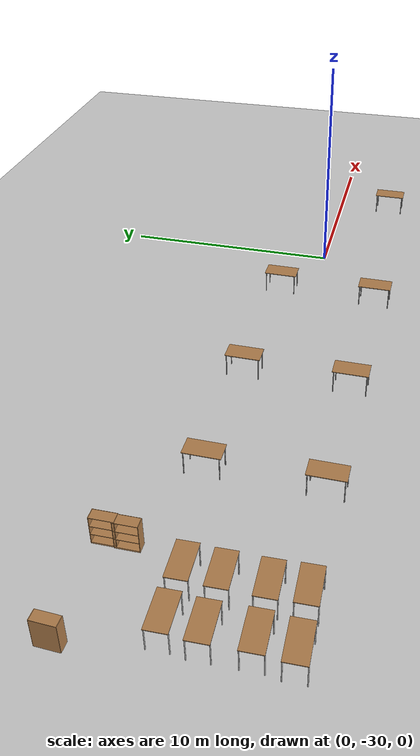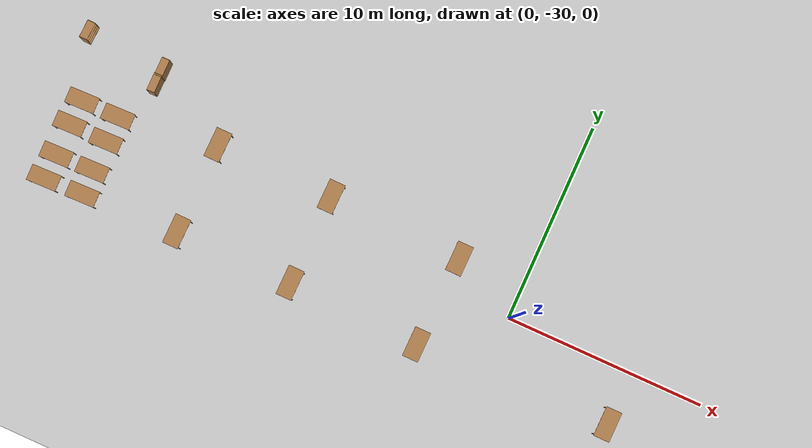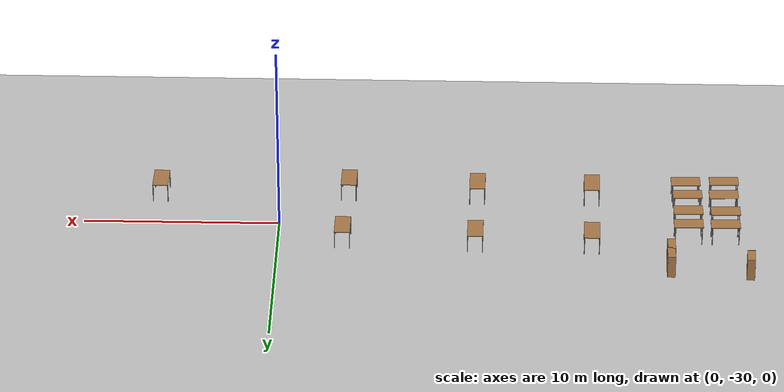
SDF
<sdf version="1.6">
 <world name="default">
  <model name="ground_plane">
   <static>1</static>
   <link name="link">
    <collision name="collision">
     <geometry><plane><normal>0 0 1</normal><size>100 100</size></plane></geometry>
     <surface><friction><ode><mu>100</mu><mu2>50</mu2></ode></friction></surface>
    </collision>
    <visual name="visual">
     <cast_shadows>0</cast_shadows>
     <geometry><plane><normal>0 0 1</normal><size>100 100</size></plane></geometry>
     <material>
      <script><uri>file://media/materials/scripts/gazebo.material</uri><name>Gazebo/Grey</name></script>
     </material>
    </visual>
   </link>
  </model>
  <model name="table">
   <static>1</static>
   <link name="link">
    <collision name="surface">
     <pose>0 0 1 0 -0 0</pose>
     <geometry><box><size>1.5 0.8 0.03</size></box></geometry>
     <surface><friction><ode><mu>0.6</mu><mu2>0.6</mu2></ode></friction></surface>
    </collision>
    <visual name="visual1">
     <pose>0 0 1 0 -0 0</pose>
     <geometry><box><size>1.5 0.8 0.03</size></box></geometry>
     <material>
      <script><uri>file://media/materials/scripts/gazebo.material</uri><name>Gazebo/Wood</name></script>
     </material>
    </visual>
    <collision name="front_left_leg">
     <pose>0.68 0.38 0.5 0 -0 0</pose>
     <geometry><cylinder><radius>0.02</radius><length>1</length></cylinder></geometry>
    </collision>
    <visual name="front_left_leg">
     <pose>0.68 0.38 0.5 0 -0 0</pose>
     <geometry><cylinder><radius>0.02</radius><length>1</length></cylinder></geometry>
     <material>
      <script><uri>file://media/materials/scripts/gazebo.material</uri><name>Gazebo/Grey</name></script>
     </material>
    </visual>
    <collision name="front_right_leg">
     <pose>0.68 -0.38 0.5 0 -0 0</pose>
     <geometry><cylinder><radius>0.02</radius><length>1</length></cylinder></geometry>
    </collision>
    <visual name="front_right_leg">
     <pose>0.68 -0.38 0.5 0 -0 0</pose>
     <geometry><cylinder><radius>0.02</radius><length>1</length></cylinder></geometry>
     <material>
      <script><uri>file://media/materials/scripts/gazebo.material</uri><name>Gazebo/Grey</name></script>
     </material>
    </visual>
    <collision name="back_right_leg">
     <pose>-0.68 -0.38 0.5 0 -0 0</pose>
     <geometry><cylinder><radius>0.02</radius><length>1</length></cylinder></geometry>
    </collision>
    <visual name="back_right_leg">
     <pose>-0.68 -0.38 0.5 0 -0 0</pose>
     <geometry><cylinder><radius>0.02</radius><length>1</length></cylinder></geometry>
     <material>
      <script><uri>file://media/materials/scripts/gazebo.material</uri><name>Gazebo/Grey</name></script>
     </material>
    </visual>
    <collision name="back_left_leg">
     <pose>-0.68 0.38 0.5 0 -0 0</pose>
     <geometry><cylinder><radius>0.02</radius><length>1</length></cylinder></geometry>
    </collision>
    <visual name="back_left_leg">
     <pose>-0.68 0.38 0.5 0 -0 0</pose>
     <geometry><cylinder><radius>0.02</radius><length>1</length></cylinder></geometry>
     <material>
      <script><uri>file://media/materials/scripts/gazebo.material</uri><name>Gazebo/Grey</name></script>
     </material>
    </visual>
   </link>
   <pose>-16.0334 -32.79 0 0 0 -1.57976</pose>
  </model>
  <model name="table_clone">
   <static>1</static>
   <link name="link">
    <collision name="surface">
     <pose>0 0 1 0 -0 0</pose>
     <geometry><box><size>1.5 0.8 0.03</size></box></geometry>
     <surface><friction><ode><mu>0.6</mu><mu2>0.6</mu2></ode></friction></surface>
    </collision>
    <visual name="visual1">
     <pose>0 0 1 0 -0 0</pose>
     <geometry><box><size>1.5 0.8 0.03</size></box></geometry>
     <material>
      <script><uri>file://media/materials/scripts/gazebo.material</uri><name>Gazebo/Wood</name></script>
     </material>
    </visual>
    <collision name="front_left_leg">
     <pose>0.68 0.38 0.5 0 -0 0</pose>
     <geometry><cylinder><radius>0.02</radius><length>1</length></cylinder></geometry>
    </collision>
    <visual name="front_left_leg">
     <pose>0.68 0.38 0.5 0 -0 0</pose>
     <geometry><cylinder><radius>0.02</radius><length>1</length></cylinder></geometry>
     <material>
      <script><uri>file://media/materials/scripts/gazebo.material</uri><name>Gazebo/Grey</name></script>
     </material>
    </visual>
    <collision name="front_right_leg">
     <pose>0.68 -0.38 0.5 0 -0 0</pose>
     <geometry><cylinder><radius>0.02</radius><length>1</length></cylinder></geometry>
    </collision>
    <visual name="front_right_leg">
     <pose>0.68 -0.38 0.5 0 -0 0</pose>
     <geometry><cylinder><radius>0.02</radius><length>1</length></cylinder></geometry>
     <material>
      <script><uri>file://media/materials/scripts/gazebo.material</uri><name>Gazebo/Grey</name></script>
     </material>
    </visual>
    <collision name="back_right_leg">
     <pose>-0.68 -0.38 0.5 0 -0 0</pose>
     <geometry><cylinder><radius>0.02</radius><length>1</length></cylinder></geometry>
    </collision>
    <visual name="back_right_leg">
     <pose>-0.68 -0.38 0.5 0 -0 0</pose>
     <geometry><cylinder><radius>0.02</radius><length>1</length></cylinder></geometry>
     <material>
      <script><uri>file://media/materials/scripts/gazebo.material</uri><name>Gazebo/Grey</name></script>
     </material>
    </visual>
    <collision name="back_left_leg">
     <pose>-0.68 0.38 0.5 0 -0 0</pose>
     <geometry><cylinder><radius>0.02</radius><length>1</length></cylinder></geometry>
    </collision>
    <visual name="back_left_leg">
     <pose>-0.68 0.38 0.5 0 -0 0</pose>
     <geometry><cylinder><radius>0.02</radius><length>1</length></cylinder></geometry>
     <material>
      <script><uri>file://media/materials/scripts/gazebo.material</uri><name>Gazebo/Grey</name></script>
     </material>
    </visual>
   </link>
   <pose>-15.9856 -28.2474 0 0 0 -1.57976</pose>
  </model>
  <model name="table_clone_0">
   <static>1</static>
   <link name="link">
    <collision name="surface">
     <pose>0 0 1 0 -0 0</pose>
     <geometry><box><size>1.5 0.8 0.03</size></box></geometry>
     <surface><friction><ode><mu>0.6</mu><mu2>0.6</mu2></ode></friction></surface>
    </collision>
    <visual name="visual1">
     <pose>0 0 1 0 -0 0</pose>
     <geometry><box><size>1.5 0.8 0.03</size></box></geometry>
     <material>
      <script><uri>file://media/materials/scripts/gazebo.material</uri><name>Gazebo/Wood</name></script>
     </material>
    </visual>
    <collision name="front_left_leg">
     <pose>0.68 0.38 0.5 0 -0 0</pose>
     <geometry><cylinder><radius>0.02</radius><length>1</length></cylinder></geometry>
    </collision>
    <visual name="front_left_leg">
     <pose>0.68 0.38 0.5 0 -0 0</pose>
     <geometry><cylinder><radius>0.02</radius><length>1</length></cylinder></geometry>
     <material>
      <script><uri>file://media/materials/scripts/gazebo.material</uri><name>Gazebo/Grey</name></script>
     </material>
    </visual>
    <collision name="front_right_leg">
     <pose>0.68 -0.38 0.5 0 -0 0</pose>
     <geometry><cylinder><radius>0.02</radius><length>1</length></cylinder></geometry>
    </collision>
    <visual name="front_right_leg">
     <pose>0.68 -0.38 0.5 0 -0 0</pose>
     <geometry><cylinder><radius>0.02</radius><length>1</length></cylinder></geometry>
     <material>
      <script><uri>file://media/materials/scripts/gazebo.material</uri><name>Gazebo/Grey</name></script>
     </material>
    </visual>
    <collision name="back_right_leg">
     <pose>-0.68 -0.38 0.5 0 -0 0</pose>
     <geometry><cylinder><radius>0.02</radius><length>1</length></cylinder></geometry>
    </collision>
    <visual name="back_right_leg">
     <pose>-0.68 -0.38 0.5 0 -0 0</pose>
     <geometry><cylinder><radius>0.02</radius><length>1</length></cylinder></geometry>
     <material>
      <script><uri>file://media/materials/scripts/gazebo.material</uri><name>Gazebo/Grey</name></script>
     </material>
    </visual>
    <collision name="back_left_leg">
     <pose>-0.68 0.38 0.5 0 -0 0</pose>
     <geometry><cylinder><radius>0.02</radius><length>1</length></cylinder></geometry>
    </collision>
    <visual name="back_left_leg">
     <pose>-0.68 0.38 0.5 0 -0 0</pose>
     <geometry><cylinder><radius>0.02</radius><length>1</length></cylinder></geometry>
     <material>
      <script><uri>file://media/materials/scripts/gazebo.material</uri><name>Gazebo/Grey</name></script>
     </material>
    </visual>
   </link>
   <pose>-10.0644 -28.2662 0 0 0 -1.57976</pose>
  </model>
  <model name="table_clone_1">
   <static>1</static>
   <link name="link">
    <collision name="surface">
     <pose>0 0 1 0 -0 0</pose>
     <geometry><box><size>1.5 0.8 0.03</size></box></geometry>
     <surface><friction><ode><mu>0.6</mu><mu2>0.6</mu2></ode></friction></surface>
    </collision>
    <visual name="visual1">
     <pose>0 0 1 0 -0 0</pose>
     <geometry><box><size>1.5 0.8 0.03</size></box></geometry>
     <material>
      <script><uri>file://media/materials/scripts/gazebo.material</uri><name>Gazebo/Wood</name></script>
     </material>
    </visual>
    <collision name="front_left_leg">
     <pose>0.68 0.38 0.5 0 -0 0</pose>
     <geometry><cylinder><radius>0.02</radius><length>1</length></cylinder></geometry>
    </collision>
    <visual name="front_left_leg">
     <pose>0.68 0.38 0.5 0 -0 0</pose>
     <geometry><cylinder><radius>0.02</radius><length>1</length></cylinder></geometry>
     <material>
      <script><uri>file://media/materials/scripts/gazebo.material</uri><name>Gazebo/Grey</name></script>
     </material>
    </visual>
    <collision name="front_right_leg">
     <pose>0.68 -0.38 0.5 0 -0 0</pose>
     <geometry><cylinder><radius>0.02</radius><length>1</length></cylinder></geometry>
    </collision>
    <visual name="front_right_leg">
     <pose>0.68 -0.38 0.5 0 -0 0</pose>
     <geometry><cylinder><radius>0.02</radius><length>1</length></cylinder></geometry>
     <material>
      <script><uri>file://media/materials/scripts/gazebo.material</uri><name>Gazebo/Grey</name></script>
     </material>
    </visual>
    <collision name="back_right_leg">
     <pose>-0.68 -0.38 0.5 0 -0 0</pose>
     <geometry><cylinder><radius>0.02</radius><length>1</length></cylinder></geometry>
    </collision>
    <visual name="back_right_leg">
     <pose>-0.68 -0.38 0.5 0 -0 0</pose>
     <geometry><cylinder><radius>0.02</radius><length>1</length></cylinder></geometry>
     <material>
      <script><uri>file://media/materials/scripts/gazebo.material</uri><name>Gazebo/Grey</name></script>
     </material>
    </visual>
    <collision name="back_left_leg">
     <pose>-0.68 0.38 0.5 0 -0 0</pose>
     <geometry><cylinder><radius>0.02</radius><length>1</length></cylinder></geometry>
    </collision>
    <visual name="back_left_leg">
     <pose>-0.68 0.38 0.5 0 -0 0</pose>
     <geometry><cylinder><radius>0.02</radius><length>1</length></cylinder></geometry>
     <material>
      <script><uri>file://media/materials/scripts/gazebo.material</uri><name>Gazebo/Grey</name></script>
     </material>
    </visual>
   </link>
   <pose>-10.1312 -32.786 0 0 0 -1.57976</pose>
  </model>
  <model name="table_clone_2">
   <static>1</static>
   <link name="link">
    <collision name="surface">
     <pose>0 0 1 0 -0 0</pose>
     <geometry><box><size>1.5 0.8 0.03</size></box></geometry>
     <surface><friction><ode><mu>0.6</mu><mu2>0.6</mu2></ode></friction></surface>
    </collision>
    <visual name="visual1">
     <pose>0 0 1 0 -0 0</pose>
     <geometry><box><size>1.5 0.8 0.03</size></box></geometry>
     <material>
      <script><uri>file://media/materials/scripts/gazebo.material</uri><name>Gazebo/Wood</name></script>
     </material>
    </visual>
    <collision name="front_left_leg">
     <pose>0.68 0.38 0.5 0 -0 0</pose>
     <geometry><cylinder><radius>0.02</radius><length>1</length></cylinder></geometry>
    </collision>
    <visual name="front_left_leg">
     <pose>0.68 0.38 0.5 0 -0 0</pose>
     <geometry><cylinder><radius>0.02</radius><length>1</length></cylinder></geometry>
     <material>
      <script><uri>file://media/materials/scripts/gazebo.material</uri><name>Gazebo/Grey</name></script>
     </material>
    </visual>
    <collision name="front_right_leg">
     <pose>0.68 -0.38 0.5 0 -0 0</pose>
     <geometry><cylinder><radius>0.02</radius><length>1</length></cylinder></geometry>
    </collision>
    <visual name="front_right_leg">
     <pose>0.68 -0.38 0.5 0 -0 0</pose>
     <geometry><cylinder><radius>0.02</radius><length>1</length></cylinder></geometry>
     <material>
      <script><uri>file://media/materials/scripts/gazebo.material</uri><name>Gazebo/Grey</name></script>
     </material>
    </visual>
    <collision name="back_right_leg">
     <pose>-0.68 -0.38 0.5 0 -0 0</pose>
     <geometry><cylinder><radius>0.02</radius><length>1</length></cylinder></geometry>
    </collision>
    <visual name="back_right_leg">
     <pose>-0.68 -0.38 0.5 0 -0 0</pose>
     <geometry><cylinder><radius>0.02</radius><length>1</length></cylinder></geometry>
     <material>
      <script><uri>file://media/materials/scripts/gazebo.material</uri><name>Gazebo/Grey</name></script>
     </material>
    </visual>
    <collision name="back_left_leg">
     <pose>-0.68 0.38 0.5 0 -0 0</pose>
     <geometry><cylinder><radius>0.02</radius><length>1</length></cylinder></geometry>
    </collision>
    <visual name="back_left_leg">
     <pose>-0.68 0.38 0.5 0 -0 0</pose>
     <geometry><cylinder><radius>0.02</radius><length>1</length></cylinder></geometry>
     <material>
      <script><uri>file://media/materials/scripts/gazebo.material</uri><name>Gazebo/Grey</name></script>
     </material>
    </visual>
   </link>
   <pose>-3.31186 -28.443 0 0 0 -1.57976</pose>
  </model>
  <model name="table_clone_3">
   <static>1</static>
   <link name="link">
    <collision name="surface">
     <pose>0 0 1 0 -0 0</pose>
     <geometry><box><size>1.5 0.8 0.03</size></box></geometry>
     <surface><friction><ode><mu>0.6</mu><mu2>0.6</mu2></ode></friction></surface>
    </collision>
    <visual name="visual1">
     <pose>0 0 1 0 -0 0</pose>
     <geometry><box><size>1.5 0.8 0.03</size></box></geometry>
     <material>
      <script><uri>file://media/materials/scripts/gazebo.material</uri><name>Gazebo/Wood</name></script>
     </material>
    </visual>
    <collision name="front_left_leg">
     <pose>0.68 0.38 0.5 0 -0 0</pose>
     <geometry><cylinder><radius>0.02</radius><length>1</length></cylinder></geometry>
    </collision>
    <visual name="front_left_leg">
     <pose>0.68 0.38 0.5 0 -0 0</pose>
     <geometry><cylinder><radius>0.02</radius><length>1</length></cylinder></geometry>
     <material>
      <script><uri>file://media/materials/scripts/gazebo.material</uri><name>Gazebo/Grey</name></script>
     </material>
    </visual>
    <collision name="front_right_leg">
     <pose>0.68 -0.38 0.5 0 -0 0</pose>
     <geometry><cylinder><radius>0.02</radius><length>1</length></cylinder></geometry>
    </collision>
    <visual name="front_right_leg">
     <pose>0.68 -0.38 0.5 0 -0 0</pose>
     <geometry><cylinder><radius>0.02</radius><length>1</length></cylinder></geometry>
     <material>
      <script><uri>file://media/materials/scripts/gazebo.material</uri><name>Gazebo/Grey</name></script>
     </material>
    </visual>
    <collision name="back_right_leg">
     <pose>-0.68 -0.38 0.5 0 -0 0</pose>
     <geometry><cylinder><radius>0.02</radius><length>1</length></cylinder></geometry>
    </collision>
    <visual name="back_right_leg">
     <pose>-0.68 -0.38 0.5 0 -0 0</pose>
     <geometry><cylinder><radius>0.02</radius><length>1</length></cylinder></geometry>
     <material>
      <script><uri>file://media/materials/scripts/gazebo.material</uri><name>Gazebo/Grey</name></script>
     </material>
    </visual>
    <collision name="back_left_leg">
     <pose>-0.68 0.38 0.5 0 -0 0</pose>
     <geometry><cylinder><radius>0.02</radius><length>1</length></cylinder></geometry>
    </collision>
    <visual name="back_left_leg">
     <pose>-0.68 0.38 0.5 0 -0 0</pose>
     <geometry><cylinder><radius>0.02</radius><length>1</length></cylinder></geometry>
     <material>
      <script><uri>file://media/materials/scripts/gazebo.material</uri><name>Gazebo/Grey</name></script>
     </material>
    </visual>
   </link>
   <pose>-3.49349 -32.9668 0 0 0 -1.57976</pose>
  </model>
  <model name="table_clone_4">
   <static>1</static>
   <link name="link">
    <collision name="surface">
     <pose>0 0 1 0 -0 0</pose>
     <geometry><box><size>1.5 0.8 0.03</size></box></geometry>
     <surface><friction><ode><mu>0.6</mu><mu2>0.6</mu2></ode></friction></surface>
    </collision>
    <visual name="visual1">
     <pose>0 0 1 0 -0 0</pose>
     <geometry><box><size>1.5 0.8 0.03</size></box></geometry>
     <material>
      <script><uri>file://media/materials/scripts/gazebo.material</uri><name>Gazebo/Wood</name></script>
     </material>
    </visual>
    <collision name="front_left_leg">
     <pose>0.68 0.38 0.5 0 -0 0</pose>
     <geometry><cylinder><radius>0.02</radius><length>1</length></cylinder></geometry>
    </collision>
    <visual name="front_left_leg">
     <pose>0.68 0.38 0.5 0 -0 0</pose>
     <geometry><cylinder><radius>0.02</radius><length>1</length></cylinder></geometry>
     <material>
      <script><uri>file://media/materials/scripts/gazebo.material</uri><name>Gazebo/Grey</name></script>
     </material>
    </visual>
    <collision name="front_right_leg">
     <pose>0.68 -0.38 0.5 0 -0 0</pose>
     <geometry><cylinder><radius>0.02</radius><length>1</length></cylinder></geometry>
    </collision>
    <visual name="front_right_leg">
     <pose>0.68 -0.38 0.5 0 -0 0</pose>
     <geometry><cylinder><radius>0.02</radius><length>1</length></cylinder></geometry>
     <material>
      <script><uri>file://media/materials/scripts/gazebo.material</uri><name>Gazebo/Grey</name></script>
     </material>
    </visual>
    <collision name="back_right_leg">
     <pose>-0.68 -0.38 0.5 0 -0 0</pose>
     <geometry><cylinder><radius>0.02</radius><length>1</length></cylinder></geometry>
    </collision>
    <visual name="back_right_leg">
     <pose>-0.68 -0.38 0.5 0 -0 0</pose>
     <geometry><cylinder><radius>0.02</radius><length>1</length></cylinder></geometry>
     <material>
      <script><uri>file://media/materials/scripts/gazebo.material</uri><name>Gazebo/Grey</name></script>
     </material>
    </visual>
    <collision name="back_left_leg">
     <pose>-0.68 0.38 0.5 0 -0 0</pose>
     <geometry><cylinder><radius>0.02</radius><length>1</length></cylinder></geometry>
    </collision>
    <visual name="back_left_leg">
     <pose>-0.68 0.38 0.5 0 -0 0</pose>
     <geometry><cylinder><radius>0.02</radius><length>1</length></cylinder></geometry>
     <material>
      <script><uri>file://media/materials/scripts/gazebo.material</uri><name>Gazebo/Grey</name></script>
     </material>
    </visual>
   </link>
   <pose>6.2219 -32.6714 0 0 0 -1.57976</pose>
  </model>
  <model name="table_clone_5_clone_2_clone_0_clone_2">
   <static>1</static>
   <link name="link">
    <collision name="surface">
     <pose>0 0 1 0 -0 0</pose>
     <geometry><box><size>1.5 0.8 0.03</size></box></geometry>
     <surface><friction><ode><mu>0.6</mu><mu2>0.6</mu2></ode></friction></surface>
    </collision>
    <visual name="visual1">
     <pose>0 0 1 0 -0 0</pose>
     <geometry><box><size>1.5 0.8 0.03</size></box></geometry>
     <material>
      <script><uri>file://media/materials/scripts/gazebo.material</uri><name>Gazebo/Wood</name></script>
     </material>
    </visual>
    <collision name="front_left_leg">
     <pose>0.68 0.38 0.5 0 -0 0</pose>
     <geometry><cylinder><radius>0.02</radius><length>1</length></cylinder></geometry>
    </collision>
    <visual name="front_left_leg">
     <pose>0.68 0.38 0.5 0 -0 0</pose>
     <geometry><cylinder><radius>0.02</radius><length>1</length></cylinder></geometry>
     <material>
      <script><uri>file://media/materials/scripts/gazebo.material</uri><name>Gazebo/Grey</name></script>
     </material>
    </visual>
    <collision name="front_right_leg">
     <pose>0.68 -0.38 0.5 0 -0 0</pose>
     <geometry><cylinder><radius>0.02</radius><length>1</length></cylinder></geometry>
    </collision>
    <visual name="front_right_leg">
     <pose>0.68 -0.38 0.5 0 -0 0</pose>
     <geometry><cylinder><radius>0.02</radius><length>1</length></cylinder></geometry>
     <material>
      <script><uri>file://media/materials/scripts/gazebo.material</uri><name>Gazebo/Grey</name></script>
     </material>
    </visual>
    <collision name="back_right_leg">
     <pose>-0.68 -0.38 0.5 0 -0 0</pose>
     <geometry><cylinder><radius>0.02</radius><length>1</length></cylinder></geometry>
    </collision>
    <visual name="back_right_leg">
     <pose>-0.68 -0.38 0.5 0 -0 0</pose>
     <geometry><cylinder><radius>0.02</radius><length>1</length></cylinder></geometry>
     <material>
      <script><uri>file://media/materials/scripts/gazebo.material</uri><name>Gazebo/Grey</name></script>
     </material>
    </visual>
    <collision name="back_left_leg">
     <pose>-0.68 0.38 0.5 0 -0 0</pose>
     <geometry><cylinder><radius>0.02</radius><length>1</length></cylinder></geometry>
    </collision>
    <visual name="back_left_leg">
     <pose>-0.68 0.38 0.5 0 -0 0</pose>
     <geometry><cylinder><radius>0.02</radius><length>1</length></cylinder></geometry>
     <material>
      <script><uri>file://media/materials/scripts/gazebo.material</uri><name>Gazebo/Grey</name></script>
     </material>
    </visual>
   </link>
   <pose>-22.8458 -33.087 0 0 0 -3.114</pose>
  </model>
  <model name="table_clone_5_clone_2_clone_0_clone_3">
   <static>1</static>
   <link name="link">
    <collision name="surface">
     <pose>0 0 1 0 -0 0</pose>
     <geometry><box><size>1.5 0.8 0.03</size></box></geometry>
     <surface><friction><ode><mu>0.6</mu><mu2>0.6</mu2></ode></friction></surface>
    </collision>
    <visual name="visual1">
     <pose>0 0 1 0 -0 0</pose>
     <geometry><box><size>1.5 0.8 0.03</size></box></geometry>
     <material>
      <script><uri>file://media/materials/scripts/gazebo.material</uri><name>Gazebo/Wood</name></script>
     </material>
    </visual>
    <collision name="front_left_leg">
     <pose>0.68 0.38 0.5 0 -0 0</pose>
     <geometry><cylinder><radius>0.02</radius><length>1</length></cylinder></geometry>
    </collision>
    <visual name="front_left_leg">
     <pose>0.68 0.38 0.5 0 -0 0</pose>
     <geometry><cylinder><radius>0.02</radius><length>1</length></cylinder></geometry>
     <material>
      <script><uri>file://media/materials/scripts/gazebo.material</uri><name>Gazebo/Grey</name></script>
     </material>
    </visual>
    <collision name="front_right_leg">
     <pose>0.68 -0.38 0.5 0 -0 0</pose>
     <geometry><cylinder><radius>0.02</radius><length>1</length></cylinder></geometry>
    </collision>
    <visual name="front_right_leg">
     <pose>0.68 -0.38 0.5 0 -0 0</pose>
     <geometry><cylinder><radius>0.02</radius><length>1</length></cylinder></geometry>
     <material>
      <script><uri>file://media/materials/scripts/gazebo.material</uri><name>Gazebo/Grey</name></script>
     </material>
    </visual>
    <collision name="back_right_leg">
     <pose>-0.68 -0.38 0.5 0 -0 0</pose>
     <geometry><cylinder><radius>0.02</radius><length>1</length></cylinder></geometry>
    </collision>
    <visual name="back_right_leg">
     <pose>-0.68 -0.38 0.5 0 -0 0</pose>
     <geometry><cylinder><radius>0.02</radius><length>1</length></cylinder></geometry>
     <material>
      <script><uri>file://media/materials/scripts/gazebo.material</uri><name>Gazebo/Grey</name></script>
     </material>
    </visual>
    <collision name="back_left_leg">
     <pose>-0.68 0.38 0.5 0 -0 0</pose>
     <geometry><cylinder><radius>0.02</radius><length>1</length></cylinder></geometry>
    </collision>
    <visual name="back_left_leg">
     <pose>-0.68 0.38 0.5 0 -0 0</pose>
     <geometry><cylinder><radius>0.02</radius><length>1</length></cylinder></geometry>
     <material>
      <script><uri>file://media/materials/scripts/gazebo.material</uri><name>Gazebo/Grey</name></script>
     </material>
    </visual>
   </link>
   <pose>-20.8664 -33.0301 0 0 0 -3.114</pose>
  </model>
  <model name="table_clone_5_clone_2_clone_0_clone_4">
   <static>1</static>
   <link name="link">
    <collision name="surface">
     <pose>0 0 1 0 -0 0</pose>
     <geometry><box><size>1.5 0.8 0.03</size></box></geometry>
     <surface><friction><ode><mu>0.6</mu><mu2>0.6</mu2></ode></friction></surface>
    </collision>
    <visual name="visual1">
     <pose>0 0 1 0 -0 0</pose>
     <geometry><box><size>1.5 0.8 0.03</size></box></geometry>
     <material>
      <script><uri>file://media/materials/scripts/gazebo.material</uri><name>Gazebo/Wood</name></script>
     </material>
    </visual>
    <collision name="front_left_leg">
     <pose>0.68 0.38 0.5 0 -0 0</pose>
     <geometry><cylinder><radius>0.02</radius><length>1</length></cylinder></geometry>
    </collision>
    <visual name="front_left_leg">
     <pose>0.68 0.38 0.5 0 -0 0</pose>
     <geometry><cylinder><radius>0.02</radius><length>1</length></cylinder></geometry>
     <material>
      <script><uri>file://media/materials/scripts/gazebo.material</uri><name>Gazebo/Grey</name></script>
     </material>
    </visual>
    <collision name="front_right_leg">
     <pose>0.68 -0.38 0.5 0 -0 0</pose>
     <geometry><cylinder><radius>0.02</radius><length>1</length></cylinder></geometry>
    </collision>
    <visual name="front_right_leg">
     <pose>0.68 -0.38 0.5 0 -0 0</pose>
     <geometry><cylinder><radius>0.02</radius><length>1</length></cylinder></geometry>
     <material>
      <script><uri>file://media/materials/scripts/gazebo.material</uri><name>Gazebo/Grey</name></script>
     </material>
    </visual>
    <collision name="back_right_leg">
     <pose>-0.68 -0.38 0.5 0 -0 0</pose>
     <geometry><cylinder><radius>0.02</radius><length>1</length></cylinder></geometry>
    </collision>
    <visual name="back_right_leg">
     <pose>-0.68 -0.38 0.5 0 -0 0</pose>
     <geometry><cylinder><radius>0.02</radius><length>1</length></cylinder></geometry>
     <material>
      <script><uri>file://media/materials/scripts/gazebo.material</uri><name>Gazebo/Grey</name></script>
     </material>
    </visual>
    <collision name="back_left_leg">
     <pose>-0.68 0.38 0.5 0 -0 0</pose>
     <geometry><cylinder><radius>0.02</radius><length>1</length></cylinder></geometry>
    </collision>
    <visual name="back_left_leg">
     <pose>-0.68 0.38 0.5 0 -0 0</pose>
     <geometry><cylinder><radius>0.02</radius><length>1</length></cylinder></geometry>
     <material>
      <script><uri>file://media/materials/scripts/gazebo.material</uri><name>Gazebo/Grey</name></script>
     </material>
    </visual>
   </link>
   <pose>-20.9273 -31.791 0 0 0 -3.114</pose>
  </model>
  <model name="table_clone_5_clone_2_clone_0_clone_5">
   <static>1</static>
   <link name="link">
    <collision name="surface">
     <pose>0 0 1 0 -0 0</pose>
     <geometry><box><size>1.5 0.8 0.03</size></box></geometry>
     <surface><friction><ode><mu>0.6</mu><mu2>0.6</mu2></ode></friction></surface>
    </collision>
    <visual name="visual1">
     <pose>0 0 1 0 -0 0</pose>
     <geometry><box><size>1.5 0.8 0.03</size></box></geometry>
     <material>
      <script><uri>file://media/materials/scripts/gazebo.material</uri><name>Gazebo/Wood</name></script>
     </material>
    </visual>
    <collision name="front_left_leg">
     <pose>0.68 0.38 0.5 0 -0 0</pose>
     <geometry><cylinder><radius>0.02</radius><length>1</length></cylinder></geometry>
    </collision>
    <visual name="front_left_leg">
     <pose>0.68 0.38 0.5 0 -0 0</pose>
     <geometry><cylinder><radius>0.02</radius><length>1</length></cylinder></geometry>
     <material>
      <script><uri>file://media/materials/scripts/gazebo.material</uri><name>Gazebo/Grey</name></script>
     </material>
    </visual>
    <collision name="front_right_leg">
     <pose>0.68 -0.38 0.5 0 -0 0</pose>
     <geometry><cylinder><radius>0.02</radius><length>1</length></cylinder></geometry>
    </collision>
    <visual name="front_right_leg">
     <pose>0.68 -0.38 0.5 0 -0 0</pose>
     <geometry><cylinder><radius>0.02</radius><length>1</length></cylinder></geometry>
     <material>
      <script><uri>file://media/materials/scripts/gazebo.material</uri><name>Gazebo/Grey</name></script>
     </material>
    </visual>
    <collision name="back_right_leg">
     <pose>-0.68 -0.38 0.5 0 -0 0</pose>
     <geometry><cylinder><radius>0.02</radius><length>1</length></cylinder></geometry>
    </collision>
    <visual name="back_right_leg">
     <pose>-0.68 -0.38 0.5 0 -0 0</pose>
     <geometry><cylinder><radius>0.02</radius><length>1</length></cylinder></geometry>
     <material>
      <script><uri>file://media/materials/scripts/gazebo.material</uri><name>Gazebo/Grey</name></script>
     </material>
    </visual>
    <collision name="back_left_leg">
     <pose>-0.68 0.38 0.5 0 -0 0</pose>
     <geometry><cylinder><radius>0.02</radius><length>1</length></cylinder></geometry>
    </collision>
    <visual name="back_left_leg">
     <pose>-0.68 0.38 0.5 0 -0 0</pose>
     <geometry><cylinder><radius>0.02</radius><length>1</length></cylinder></geometry>
     <material>
      <script><uri>file://media/materials/scripts/gazebo.material</uri><name>Gazebo/Grey</name></script>
     </material>
    </visual>
   </link>
   <pose>-20.9221 -30.2709 0 0 0 -3.114</pose>
  </model>
  <model name="table_clone_5_clone_2_clone_0_clone_6">
   <static>1</static>
   <link name="link">
    <collision name="surface">
     <pose>0 0 1 0 -0 0</pose>
     <geometry><box><size>1.5 0.8 0.03</size></box></geometry>
     <surface><friction><ode><mu>0.6</mu><mu2>0.6</mu2></ode></friction></surface>
    </collision>
    <visual name="visual1">
     <pose>0 0 1 0 -0 0</pose>
     <geometry><box><size>1.5 0.8 0.03</size></box></geometry>
     <material>
      <script><uri>file://media/materials/scripts/gazebo.material</uri><name>Gazebo/Wood</name></script>
     </material>
    </visual>
    <collision name="front_left_leg">
     <pose>0.68 0.38 0.5 0 -0 0</pose>
     <geometry><cylinder><radius>0.02</radius><length>1</length></cylinder></geometry>
    </collision>
    <visual name="front_left_leg">
     <pose>0.68 0.38 0.5 0 -0 0</pose>
     <geometry><cylinder><radius>0.02</radius><length>1</length></cylinder></geometry>
     <material>
      <script><uri>file://media/materials/scripts/gazebo.material</uri><name>Gazebo/Grey</name></script>
     </material>
    </visual>
    <collision name="front_right_leg">
     <pose>0.68 -0.38 0.5 0 -0 0</pose>
     <geometry><cylinder><radius>0.02</radius><length>1</length></cylinder></geometry>
    </collision>
    <visual name="front_right_leg">
     <pose>0.68 -0.38 0.5 0 -0 0</pose>
     <geometry><cylinder><radius>0.02</radius><length>1</length></cylinder></geometry>
     <material>
      <script><uri>file://media/materials/scripts/gazebo.material</uri><name>Gazebo/Grey</name></script>
     </material>
    </visual>
    <collision name="back_right_leg">
     <pose>-0.68 -0.38 0.5 0 -0 0</pose>
     <geometry><cylinder><radius>0.02</radius><length>1</length></cylinder></geometry>
    </collision>
    <visual name="back_right_leg">
     <pose>-0.68 -0.38 0.5 0 -0 0</pose>
     <geometry><cylinder><radius>0.02</radius><length>1</length></cylinder></geometry>
     <material>
      <script><uri>file://media/materials/scripts/gazebo.material</uri><name>Gazebo/Grey</name></script>
     </material>
    </visual>
    <collision name="back_left_leg">
     <pose>-0.68 0.38 0.5 0 -0 0</pose>
     <geometry><cylinder><radius>0.02</radius><length>1</length></cylinder></geometry>
    </collision>
    <visual name="back_left_leg">
     <pose>-0.68 0.38 0.5 0 -0 0</pose>
     <geometry><cylinder><radius>0.02</radius><length>1</length></cylinder></geometry>
     <material>
      <script><uri>file://media/materials/scripts/gazebo.material</uri><name>Gazebo/Grey</name></script>
     </material>
    </visual>
   </link>
   <pose>-20.8972 -28.9821 0 0 0 -3.114</pose>
  </model>
  <model name="table_clone_5_clone_2_clone_0_clone_7">
   <static>1</static>
   <link name="link">
    <collision name="surface">
     <pose>0 0 1 0 -0 0</pose>
     <geometry><box><size>1.5 0.8 0.03</size></box></geometry>
     <surface><friction><ode><mu>0.6</mu><mu2>0.6</mu2></ode></friction></surface>
    </collision>
    <visual name="visual1">
     <pose>0 0 1 0 -0 0</pose>
     <geometry><box><size>1.5 0.8 0.03</size></box></geometry>
     <material>
      <script><uri>file://media/materials/scripts/gazebo.material</uri><name>Gazebo/Wood</name></script>
     </material>
    </visual>
    <collision name="front_left_leg">
     <pose>0.68 0.38 0.5 0 -0 0</pose>
     <geometry><cylinder><radius>0.02</radius><length>1</length></cylinder></geometry>
    </collision>
    <visual name="front_left_leg">
     <pose>0.68 0.38 0.5 0 -0 0</pose>
     <geometry><cylinder><radius>0.02</radius><length>1</length></cylinder></geometry>
     <material>
      <script><uri>file://media/materials/scripts/gazebo.material</uri><name>Gazebo/Grey</name></script>
     </material>
    </visual>
    <collision name="front_right_leg">
     <pose>0.68 -0.38 0.5 0 -0 0</pose>
     <geometry><cylinder><radius>0.02</radius><length>1</length></cylinder></geometry>
    </collision>
    <visual name="front_right_leg">
     <pose>0.68 -0.38 0.5 0 -0 0</pose>
     <geometry><cylinder><radius>0.02</radius><length>1</length></cylinder></geometry>
     <material>
      <script><uri>file://media/materials/scripts/gazebo.material</uri><name>Gazebo/Grey</name></script>
     </material>
    </visual>
    <collision name="back_right_leg">
     <pose>-0.68 -0.38 0.5 0 -0 0</pose>
     <geometry><cylinder><radius>0.02</radius><length>1</length></cylinder></geometry>
    </collision>
    <visual name="back_right_leg">
     <pose>-0.68 -0.38 0.5 0 -0 0</pose>
     <geometry><cylinder><radius>0.02</radius><length>1</length></cylinder></geometry>
     <material>
      <script><uri>file://media/materials/scripts/gazebo.material</uri><name>Gazebo/Grey</name></script>
     </material>
    </visual>
    <collision name="back_left_leg">
     <pose>-0.68 0.38 0.5 0 -0 0</pose>
     <geometry><cylinder><radius>0.02</radius><length>1</length></cylinder></geometry>
    </collision>
    <visual name="back_left_leg">
     <pose>-0.68 0.38 0.5 0 -0 0</pose>
     <geometry><cylinder><radius>0.02</radius><length>1</length></cylinder></geometry>
     <material>
      <script><uri>file://media/materials/scripts/gazebo.material</uri><name>Gazebo/Grey</name></script>
     </material>
    </visual>
   </link>
   <pose>-22.788 -31.8267 0 0 0 -3.114</pose>
  </model>
  <model name="table_clone_5_clone_2_clone_0_clone_8">
   <static>1</static>
   <link name="link">
    <collision name="surface">
     <pose>0 0 1 0 -0 0</pose>
     <geometry><box><size>1.5 0.8 0.03</size></box></geometry>
     <surface><friction><ode><mu>0.6</mu><mu2>0.6</mu2></ode></friction></surface>
    </collision>
    <visual name="visual1">
     <pose>0 0 1 0 -0 0</pose>
     <geometry><box><size>1.5 0.8 0.03</size></box></geometry>
     <material>
      <script><uri>file://media/materials/scripts/gazebo.material</uri><name>Gazebo/Wood</name></script>
     </material>
    </visual>
    <collision name="front_left_leg">
     <pose>0.68 0.38 0.5 0 -0 0</pose>
     <geometry><cylinder><radius>0.02</radius><length>1</length></cylinder></geometry>
    </collision>
    <visual name="front_left_leg">
     <pose>0.68 0.38 0.5 0 -0 0</pose>
     <geometry><cylinder><radius>0.02</radius><length>1</length></cylinder></geometry>
     <material>
      <script><uri>file://media/materials/scripts/gazebo.material</uri><name>Gazebo/Grey</name></script>
     </material>
    </visual>
    <collision name="front_right_leg">
     <pose>0.68 -0.38 0.5 0 -0 0</pose>
     <geometry><cylinder><radius>0.02</radius><length>1</length></cylinder></geometry>
    </collision>
    <visual name="front_right_leg">
     <pose>0.68 -0.38 0.5 0 -0 0</pose>
     <geometry><cylinder><radius>0.02</radius><length>1</length></cylinder></geometry>
     <material>
      <script><uri>file://media/materials/scripts/gazebo.material</uri><name>Gazebo/Grey</name></script>
     </material>
    </visual>
    <collision name="back_right_leg">
     <pose>-0.68 -0.38 0.5 0 -0 0</pose>
     <geometry><cylinder><radius>0.02</radius><length>1</length></cylinder></geometry>
    </collision>
    <visual name="back_right_leg">
     <pose>-0.68 -0.38 0.5 0 -0 0</pose>
     <geometry><cylinder><radius>0.02</radius><length>1</length></cylinder></geometry>
     <material>
      <script><uri>file://media/materials/scripts/gazebo.material</uri><name>Gazebo/Grey</name></script>
     </material>
    </visual>
    <collision name="back_left_leg">
     <pose>-0.68 0.38 0.5 0 -0 0</pose>
     <geometry><cylinder><radius>0.02</radius><length>1</length></cylinder></geometry>
    </collision>
    <visual name="back_left_leg">
     <pose>-0.68 0.38 0.5 0 -0 0</pose>
     <geometry><cylinder><radius>0.02</radius><length>1</length></cylinder></geometry>
     <material>
      <script><uri>file://media/materials/scripts/gazebo.material</uri><name>Gazebo/Grey</name></script>
     </material>
    </visual>
   </link>
   <pose>-22.829 -30.2388 0 0 0 -3.114</pose>
  </model>
  <model name="table_clone_5_clone_2_clone_0_clone_9">
   <static>1</static>
   <link name="link">
    <collision name="surface">
     <pose>0 0 1 0 -0 0</pose>
     <geometry><box><size>1.5 0.8 0.03</size></box></geometry>
     <surface><friction><ode><mu>0.6</mu><mu2>0.6</mu2></ode></friction></surface>
    </collision>
    <visual name="visual1">
     <pose>0 0 1 0 -0 0</pose>
     <geometry><box><size>1.5 0.8 0.03</size></box></geometry>
     <material>
      <script><uri>file://media/materials/scripts/gazebo.material</uri><name>Gazebo/Wood</name></script>
     </material>
    </visual>
    <collision name="front_left_leg">
     <pose>0.68 0.38 0.5 0 -0 0</pose>
     <geometry><cylinder><radius>0.02</radius><length>1</length></cylinder></geometry>
    </collision>
    <visual name="front_left_leg">
     <pose>0.68 0.38 0.5 0 -0 0</pose>
     <geometry><cylinder><radius>0.02</radius><length>1</length></cylinder></geometry>
     <material>
      <script><uri>file://media/materials/scripts/gazebo.material</uri><name>Gazebo/Grey</name></script>
     </material>
    </visual>
    <collision name="front_right_leg">
     <pose>0.68 -0.38 0.5 0 -0 0</pose>
     <geometry><cylinder><radius>0.02</radius><length>1</length></cylinder></geometry>
    </collision>
    <visual name="front_right_leg">
     <pose>0.68 -0.38 0.5 0 -0 0</pose>
     <geometry><cylinder><radius>0.02</radius><length>1</length></cylinder></geometry>
     <material>
      <script><uri>file://media/materials/scripts/gazebo.material</uri><name>Gazebo/Grey</name></script>
     </material>
    </visual>
    <collision name="back_right_leg">
     <pose>-0.68 -0.38 0.5 0 -0 0</pose>
     <geometry><cylinder><radius>0.02</radius><length>1</length></cylinder></geometry>
    </collision>
    <visual name="back_right_leg">
     <pose>-0.68 -0.38 0.5 0 -0 0</pose>
     <geometry><cylinder><radius>0.02</radius><length>1</length></cylinder></geometry>
     <material>
      <script><uri>file://media/materials/scripts/gazebo.material</uri><name>Gazebo/Grey</name></script>
     </material>
    </visual>
    <collision name="back_left_leg">
     <pose>-0.68 0.38 0.5 0 -0 0</pose>
     <geometry><cylinder><radius>0.02</radius><length>1</length></cylinder></geometry>
    </collision>
    <visual name="back_left_leg">
     <pose>-0.68 0.38 0.5 0 -0 0</pose>
     <geometry><cylinder><radius>0.02</radius><length>1</length></cylinder></geometry>
     <material>
      <script><uri>file://media/materials/scripts/gazebo.material</uri><name>Gazebo/Grey</name></script>
     </material>
    </visual>
   </link>
   <pose>-22.776 -28.9794 0 0 0 -3.114</pose>
  </model>
  <model name="bookshelf_clone_5_clone_clone">
   <static>1</static>
   <link name="link">
    <inertial><mass>1</mass></inertial>
    <collision name="back">
     <pose>0 0.005 0.6 0 -0 0</pose>
     <geometry><box><size>0.9 0.01 1.2</size></box></geometry>
    </collision>
    <visual name="visual1">
     <pose>0 0.005 0.6 0 -0 0</pose>
     <geometry><box><size>0.9 0.01 1.2</size></box></geometry>
     <material>
      <script><uri>file://media/materials/scripts/gazebo.material</uri><name>Gazebo/Wood</name></script>
     </material>
    </visual>
    <collision name="left_side">
     <pose>0.45 -0.195 0.6 0 -0 0</pose>
     <geometry><box><size>0.02 0.4 1.2</size></box></geometry>
    </collision>
    <visual name="visual2">
     <pose>0.45 -0.195 0.6 0 -0 0</pose>
     <geometry><box><size>0.02 0.4 1.2</size></box></geometry>
     <material>
      <script><uri>file://media/materials/scripts/gazebo.material</uri><name>Gazebo/Wood</name></script>
     </material>
    </visual>
    <collision name="right_side">
     <pose>-0.45 -0.195 0.6 0 -0 0</pose>
     <geometry><box><size>0.02 0.4 1.2</size></box></geometry>
    </collision>
    <visual name="visual3">
     <pose>-0.45 -0.195 0.6 0 -0 0</pose>
     <geometry><box><size>0.02 0.4 1.2</size></box></geometry>
     <material>
      <script><uri>file://media/materials/scripts/gazebo.material</uri><name>Gazebo/Wood</name></script>
     </material>
    </visual>
    <collision name="bottom">
     <pose>0 -0.195 0.03 0 -0 0</pose>
     <geometry><box><size>0.88 0.4 0.06</size></box></geometry>
    </collision>
    <visual name="visual4">
     <pose>0 -0.195 0.03 0 -0 0</pose>
     <geometry><box><size>0.88 0.4 0.06</size></box></geometry>
     <material>
      <script><uri>file://media/materials/scripts/gazebo.material</uri><name>Gazebo/Wood</name></script>
     </material>
    </visual>
    <collision name="top">
     <pose>0 -0.195 1.19 0 -0 0</pose>
     <geometry><box><size>0.88 0.4 0.02</size></box></geometry>
    </collision>
    <visual name="visual5">
     <pose>0 -0.195 1.19 0 -0 0</pose>
     <geometry><box><size>0.88 0.4 0.02</size></box></geometry>
     <material>
      <script><uri>file://media/materials/scripts/gazebo.material</uri><name>Gazebo/Wood</name></script>
     </material>
    </visual>
    <collision name="low_shelf">
     <pose>0 -0.195 0.43 0 -0 0</pose>
     <geometry><box><size>0.88 0.4 0.02</size></box></geometry>
    </collision>
    <visual name="visual6">
     <pose>0 -0.195 0.43 0 -0 0</pose>
     <geometry><box><size>0.88 0.4 0.02</size></box></geometry>
     <material>
      <script><uri>file://media/materials/scripts/gazebo.material</uri><name>Gazebo/Wood</name></script>
     </material>
    </visual>
    <collision name="high_shelf">
     <pose>0 -0.195 0.8 0 -0 0</pose>
     <geometry><box><size>0.88 0.4 0.02</size></box></geometry>
    </collision>
    <visual name="visual7">
     <pose>0 -0.195 0.8 0 -0 0</pose>
     <geometry><box><size>0.88 0.4 0.02</size></box></geometry>
     <material>
      <script><uri>file://media/materials/scripts/gazebo.material</uri><name>Gazebo/Wood</name></script>
     </material>
    </visual>
   </link>
   <pose>-24.131 -25.8201 0 0 -0 1.53332</pose>
  </model>
  <model name="bookshelf_clone_5_clone_clone_1">
   <static>1</static>
   <link name="link">
    <inertial><mass>1</mass></inertial>
    <collision name="back">
     <pose>0 0.005 0.6 0 -0 0</pose>
     <geometry><box><size>0.9 0.01 1.2</size></box></geometry>
    </collision>
    <visual name="visual1">
     <pose>0 0.005 0.6 0 -0 0</pose>
     <geometry><box><size>0.9 0.01 1.2</size></box></geometry>
     <material>
      <script><uri>file://media/materials/scripts/gazebo.material</uri><name>Gazebo/Wood</name></script>
     </material>
    </visual>
    <collision name="left_side">
     <pose>0.45 -0.195 0.6 0 -0 0</pose>
     <geometry><box><size>0.02 0.4 1.2</size></box></geometry>
    </collision>
    <visual name="visual2">
     <pose>0.45 -0.195 0.6 0 -0 0</pose>
     <geometry><box><size>0.02 0.4 1.2</size></box></geometry>
     <material>
      <script><uri>file://media/materials/scripts/gazebo.material</uri><name>Gazebo/Wood</name></script>
     </material>
    </visual>
    <collision name="right_side">
     <pose>-0.45 -0.195 0.6 0 -0 0</pose>
     <geometry><box><size>0.02 0.4 1.2</size></box></geometry>
    </collision>
    <visual name="visual3">
     <pose>-0.45 -0.195 0.6 0 -0 0</pose>
     <geometry><box><size>0.02 0.4 1.2</size></box></geometry>
     <material>
      <script><uri>file://media/materials/scripts/gazebo.material</uri><name>Gazebo/Wood</name></script>
     </material>
    </visual>
    <collision name="bottom">
     <pose>0 -0.195 0.03 0 -0 0</pose>
     <geometry><box><size>0.88 0.4 0.06</size></box></geometry>
    </collision>
    <visual name="visual4">
     <pose>0 -0.195 0.03 0 -0 0</pose>
     <geometry><box><size>0.88 0.4 0.06</size></box></geometry>
     <material>
      <script><uri>file://media/materials/scripts/gazebo.material</uri><name>Gazebo/Wood</name></script>
     </material>
    </visual>
    <collision name="top">
     <pose>0 -0.195 1.19 0 -0 0</pose>
     <geometry><box><size>0.88 0.4 0.02</size></box></geometry>
    </collision>
    <visual name="visual5">
     <pose>0 -0.195 1.19 0 -0 0</pose>
     <geometry><box><size>0.88 0.4 0.02</size></box></geometry>
     <material>
      <script><uri>file://media/materials/scripts/gazebo.material</uri><name>Gazebo/Wood</name></script>
     </material>
    </visual>
    <collision name="low_shelf">
     <pose>0 -0.195 0.43 0 -0 0</pose>
     <geometry><box><size>0.88 0.4 0.02</size></box></geometry>
    </collision>
    <visual name="visual6">
     <pose>0 -0.195 0.43 0 -0 0</pose>
     <geometry><box><size>0.88 0.4 0.02</size></box></geometry>
     <material>
      <script><uri>file://media/materials/scripts/gazebo.material</uri><name>Gazebo/Wood</name></script>
     </material>
    </visual>
    <collision name="high_shelf">
     <pose>0 -0.195 0.8 0 -0 0</pose>
     <geometry><box><size>0.88 0.4 0.02</size></box></geometry>
    </collision>
    <visual name="visual7">
     <pose>0 -0.195 0.8 0 -0 0</pose>
     <geometry><box><size>0.88 0.4 0.02</size></box></geometry>
     <material>
      <script><uri>file://media/materials/scripts/gazebo.material</uri><name>Gazebo/Wood</name></script>
     </material>
    </visual>
   </link>
   <pose>-19.7492 -25.9837 0 0 0 -1.56193</pose>
  </model>
  <model name="bookshelf_clone_5_clone_clone_1_clone">
   <static>1</static>
   <link name="link">
    <inertial><mass>1</mass></inertial>
    <collision name="back">
     <pose>0 0.005 0.6 0 -0 0</pose>
     <geometry><box><size>0.9 0.01 1.2</size></box></geometry>
    </collision>
    <visual name="visual1">
     <pose>0 0.005 0.6 0 -0 0</pose>
     <geometry><box><size>0.9 0.01 1.2</size></box></geometry>
     <material>
      <script><uri>file://media/materials/scripts/gazebo.material</uri><name>Gazebo/Wood</name></script>
     </material>
    </visual>
    <collision name="left_side">
     <pose>0.45 -0.195 0.6 0 -0 0</pose>
     <geometry><box><size>0.02 0.4 1.2</size></box></geometry>
    </collision>
    <visual name="visual2">
     <pose>0.45 -0.195 0.6 0 -0 0</pose>
     <geometry><box><size>0.02 0.4 1.2</size></box></geometry>
     <material>
      <script><uri>file://media/materials/scripts/gazebo.material</uri><name>Gazebo/Wood</name></script>
     </material>
    </visual>
    <collision name="right_side">
     <pose>-0.45 -0.195 0.6 0 -0 0</pose>
     <geometry><box><size>0.02 0.4 1.2</size></box></geometry>
    </collision>
    <visual name="visual3">
     <pose>-0.45 -0.195 0.6 0 -0 0</pose>
     <geometry><box><size>0.02 0.4 1.2</size></box></geometry>
     <material>
      <script><uri>file://media/materials/scripts/gazebo.material</uri><name>Gazebo/Wood</name></script>
     </material>
    </visual>
    <collision name="bottom">
     <pose>0 -0.195 0.03 0 -0 0</pose>
     <geometry><box><size>0.88 0.4 0.06</size></box></geometry>
    </collision>
    <visual name="visual4">
     <pose>0 -0.195 0.03 0 -0 0</pose>
     <geometry><box><size>0.88 0.4 0.06</size></box></geometry>
     <material>
      <script><uri>file://media/materials/scripts/gazebo.material</uri><name>Gazebo/Wood</name></script>
     </material>
    </visual>
    <collision name="top">
     <pose>0 -0.195 1.19 0 -0 0</pose>
     <geometry><box><size>0.88 0.4 0.02</size></box></geometry>
    </collision>
    <visual name="visual5">
     <pose>0 -0.195 1.19 0 -0 0</pose>
     <geometry><box><size>0.88 0.4 0.02</size></box></geometry>
     <material>
      <script><uri>file://media/materials/scripts/gazebo.material</uri><name>Gazebo/Wood</name></script>
     </material>
    </visual>
    <collision name="low_shelf">
     <pose>0 -0.195 0.43 0 -0 0</pose>
     <geometry><box><size>0.88 0.4 0.02</size></box></geometry>
    </collision>
    <visual name="visual6">
     <pose>0 -0.195 0.43 0 -0 0</pose>
     <geometry><box><size>0.88 0.4 0.02</size></box></geometry>
     <material>
      <script><uri>file://media/materials/scripts/gazebo.material</uri><name>Gazebo/Wood</name></script>
     </material>
    </visual>
    <collision name="high_shelf">
     <pose>0 -0.195 0.8 0 -0 0</pose>
     <geometry><box><size>0.88 0.4 0.02</size></box></geometry>
    </collision>
    <visual name="visual7">
     <pose>0 -0.195 0.8 0 -0 0</pose>
     <geometry><box><size>0.88 0.4 0.02</size></box></geometry>
     <material>
      <script><uri>file://media/materials/scripts/gazebo.material</uri><name>Gazebo/Wood</name></script>
     </material>
    </visual>
   </link>
   <pose>-19.7693 -26.8087 0 0 0 -1.56193</pose>
  </model>
 </world>
</sdf>
